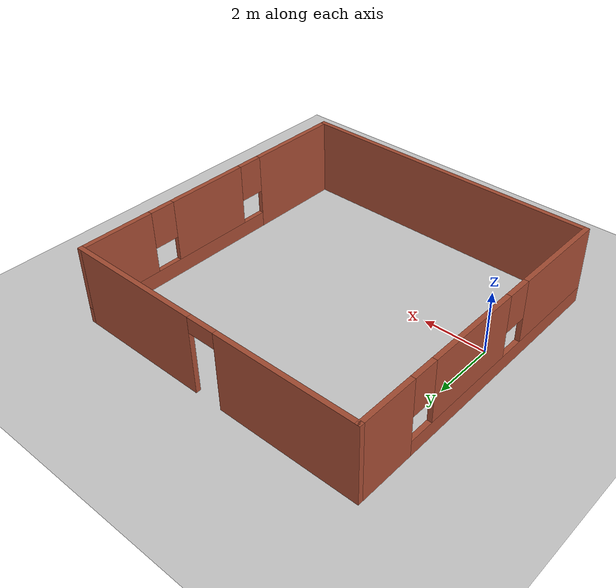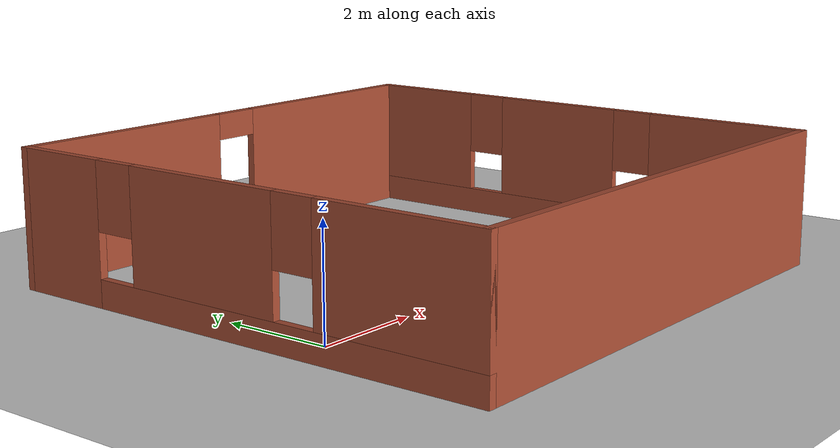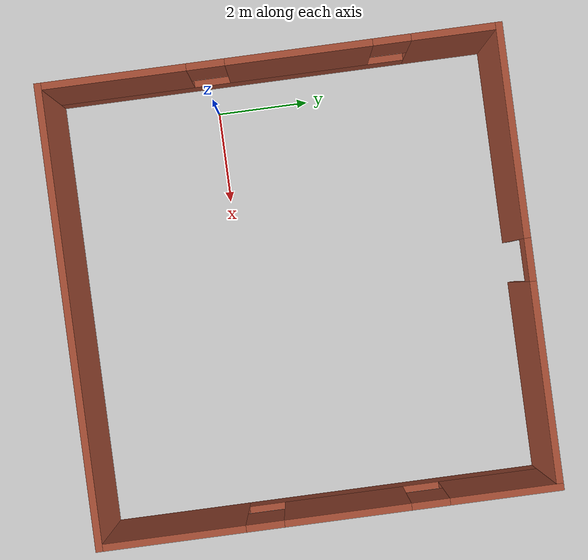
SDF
<sdf version="1.7">
 <world name="default">
  <light name="sun" type="directional">
   <pose>0 0 10 0 -0 0</pose>
   <diffuse>0.8 0.8 0.8 1</diffuse>
   <specular>0.2 0.2 0.2 1</specular>
   <attenuation>
    <range>1000</range>
    <constant>0.9</constant>
    <linear>0.01</linear>
    <quadratic>0.001</quadratic>
   </attenuation>
   <direction>-0.5 0.1 -0.9</direction>
   <spot><inner_angle>0</inner_angle><outer_angle>0</outer_angle><falloff>0</falloff></spot>
  </light>
  <model name="ground_plane">
   <static>1</static>
   <link name="link">
    <collision name="collision">
     <geometry><plane><normal>0 0 1</normal><size>100 100</size></plane></geometry>
     <surface>
      <contact><collide_bitmask>65535</collide_bitmask></contact>
      <friction><ode><mu>100</mu><mu2>50</mu2></ode></friction>
     </surface>
    </collision>
    <visual name="visual">
     <cast_shadows>0</cast_shadows>
     <geometry><plane><normal>0 0 1</normal><size>100 100</size></plane></geometry>
     <material>
      <script><uri>file://media/materials/scripts/gazebo.material</uri><name>Gazebo/Grey</name></script>
     </material>
    </visual>
   </link>
  </model>
  <gravity>0 0 -9.8</gravity>
  <magnetic_field>6e-06 2.3e-05 -4.2e-05</magnetic_field>
  <atmosphere type="adiabatic"/>
  <physics type="ode">
   <max_step_size>0.001</max_step_size>
   <real_time_factor>1</real_time_factor>
   <real_time_update_rate>1000</real_time_update_rate>
  </physics>
  <scene><ambient>0.4 0.4 0.4 1</ambient><background>0.7 0.7 0.7 1</background><shadows>1</shadows></scene>
  <spherical_coordinates>
   <surface_model>EARTH_WGS84</surface_model>
   <latitude_deg>0</latitude_deg>
   <longitude_deg>0</longitude_deg>
   <elevation>0</elevation>
   <heading_deg>0</heading_deg>
  </spherical_coordinates>
  <model name="my_building">
   <pose>4.14 1.28 0 0 -0 0</pose>
   <link name="Wall_11">
    <collision name="Wall_11_Collision">
     <geometry><box><size>9.75 0.15 2.5</size></box></geometry>
     <pose>0 0 1.25 0 -0 0</pose>
    </collision>
    <visual name="Wall_11_Visual">
     <pose>0 0 1.25 0 -0 0</pose>
     <geometry><box><size>9.75 0.15 2.5</size></box></geometry>
     <material>
      <script><uri>file://media/materials/scripts/gazebo.material</uri><name>Gazebo/Bricks</name></script>
      <ambient>1 1 1 1</ambient>
     </material>
     <meta><layer>0</layer></meta>
    </visual>
    <pose>0 -4.8 0 0 -0 0</pose>
   </link>
   <link name="Wall_12">
    <pose>4.8 -0 0 0 -0 1.5708</pose>
    <visual name="Wall_12_Visual_0">
     <pose>-3.30646 0 1.25 0 -0 0</pose>
     <geometry><box><size>3.13707 0.15 2.5</size></box></geometry>
     <material>
      <script><uri>file://media/materials/scripts/gazebo.material</uri><name>Gazebo/Bricks</name></script>
      <ambient>1 1 1 1</ambient>
     </material>
     <meta><layer>0</layer></meta>
    </visual>
    <collision name="Wall_12_Collision_0">
     <geometry><box><size>3.13707 0.15 2.5</size></box></geometry>
     <pose>-3.30646 0 1.25 0 -0 0</pose>
    </collision>
    <visual name="Wall_12_Visual_1">
     <pose>1.56854 0 0.25 0 -0 0</pose>
     <geometry><box><size>6.61293 0.15 0.5</size></box></geometry>
     <material>
      <script><uri>file://media/materials/scripts/gazebo.material</uri><name>Gazebo/Bricks</name></script>
      <ambient>1 1 1 1</ambient>
     </material>
     <meta><layer>0</layer></meta>
    </visual>
    <collision name="Wall_12_Collision_1">
     <geometry><box><size>6.61293 0.15 0.5</size></box></geometry>
     <pose>1.56854 0 0.25 0 -0 0</pose>
    </collision>
    <visual name="Wall_12_Visual_2">
     <pose>0.385304 0 1.5 0 -0 0</pose>
     <geometry><box><size>2.64646 0.15 2</size></box></geometry>
     <material>
      <script><uri>file://media/materials/scripts/gazebo.material</uri><name>Gazebo/Bricks</name></script>
      <ambient>1 1 1 1</ambient>
     </material>
     <meta><layer>0</layer></meta>
    </visual>
    <collision name="Wall_12_Collision_2">
     <geometry><box><size>2.64646 0.15 2</size></box></geometry>
     <pose>0.385304 0 1.5 0 -0 0</pose>
    </collision>
    <visual name="Wall_12_Visual_3">
     <pose>3.69177 0 1.5 0 -0 0</pose>
     <geometry><box><size>2.36647 0.15 2</size></box></geometry>
     <material>
      <script><uri>file://media/materials/scripts/gazebo.material</uri><name>Gazebo/Bricks</name></script>
      <ambient>1 1 1 1</ambient>
     </material>
     <meta><layer>0</layer></meta>
    </visual>
    <collision name="Wall_12_Collision_3">
     <geometry><box><size>2.36647 0.15 2</size></box></geometry>
     <pose>3.69177 0 1.5 0 -0 0</pose>
    </collision>
    <visual name="Wall_12_Visual_4">
     <pose>-1.33793 0 1.9 0 -0 0</pose>
     <geometry><box><size>0.8 0.15 1.2</size></box></geometry>
     <material>
      <script><uri>file://media/materials/scripts/gazebo.material</uri><name>Gazebo/Bricks</name></script>
      <ambient>1 1 1 1</ambient>
     </material>
     <meta><layer>0</layer></meta>
    </visual>
    <collision name="Wall_12_Collision_4">
     <geometry><box><size>0.8 0.15 1.2</size></box></geometry>
     <pose>-1.33793 0 1.9 0 -0 0</pose>
    </collision>
    <visual name="Wall_12_Visual_5">
     <pose>2.10853 0 1.9 0 -0 0</pose>
     <geometry><box><size>0.8 0.15 1.2</size></box></geometry>
     <material>
      <script><uri>file://media/materials/scripts/gazebo.material</uri><name>Gazebo/Bricks</name></script>
      <ambient>1 1 1 1</ambient>
     </material>
     <meta><layer>0</layer></meta>
    </visual>
    <collision name="Wall_12_Collision_5">
     <geometry><box><size>0.8 0.15 1.2</size></box></geometry>
     <pose>2.10853 0 1.9 0 -0 0</pose>
    </collision>
   </link>
   <link name="Wall_7">
    <pose>0 4.8 0 0 -0 3.14159</pose>
    <visual name="Wall_7_Visual_0">
     <pose>-2.69707 0 1.25 0 -0 0</pose>
     <geometry><box><size>4.35586 0.15 2.5</size></box></geometry>
     <material>
      <script><uri>file://media/materials/scripts/gazebo.material</uri><name>Gazebo/Bricks</name></script>
      <ambient>1 1 1 1</ambient>
     </material>
     <meta><layer>0</layer></meta>
    </visual>
    <collision name="Wall_7_Collision_0">
     <geometry><box><size>4.35586 0.15 2.5</size></box></geometry>
     <pose>-2.69707 0 1.25 0 -0 0</pose>
    </collision>
    <visual name="Wall_7_Visual_1">
     <pose>2.62793 0 1.25 0 -0 0</pose>
     <geometry><box><size>4.49414 0.15 2.5</size></box></geometry>
     <material>
      <script><uri>file://media/materials/scripts/gazebo.material</uri><name>Gazebo/Bricks</name></script>
      <ambient>1 1 1 1</ambient>
     </material>
     <meta><layer>0</layer></meta>
    </visual>
    <collision name="Wall_7_Collision_1">
     <geometry><box><size>4.49414 0.15 2.5</size></box></geometry>
     <pose>2.62793 0 1.25 0 -0 0</pose>
    </collision>
    <visual name="Wall_7_Visual_2">
     <pose>-0.069142 0 2.25 0 -0 0</pose>
     <geometry><box><size>0.9 0.15 0.5</size></box></geometry>
     <material>
      <script><uri>file://media/materials/scripts/gazebo.material</uri><name>Gazebo/Bricks</name></script>
      <ambient>1 1 1 1</ambient>
     </material>
     <meta><layer>0</layer></meta>
    </visual>
    <collision name="Wall_7_Collision_2">
     <geometry><box><size>0.9 0.15 0.5</size></box></geometry>
     <pose>-0.069142 0 2.25 0 -0 0</pose>
    </collision>
   </link>
   <link name="Wall_8">
    <pose>-4.8 -0 0 0 -0 -1.5708</pose>
    <visual name="Wall_8_Visual_0">
     <pose>-3.92307 0 1.25 0 -0 0</pose>
     <geometry><box><size>1.90385 0.15 2.5</size></box></geometry>
     <material>
      <script><uri>file://media/materials/scripts/gazebo.material</uri><name>Gazebo/Bricks</name></script>
      <ambient>1 1 1 1</ambient>
     </material>
     <meta><layer>0</layer></meta>
    </visual>
    <collision name="Wall_8_Collision_0">
     <geometry><box><size>1.90385 0.15 2.5</size></box></geometry>
     <pose>-3.92307 0 1.25 0 -0 0</pose>
    </collision>
    <visual name="Wall_8_Visual_1">
     <pose>0.951927 0 0.25 0 -0 0</pose>
     <geometry><box><size>7.84615 0.15 0.5</size></box></geometry>
     <material>
      <script><uri>file://media/materials/scripts/gazebo.material</uri><name>Gazebo/Bricks</name></script>
      <ambient>1 1 1 1</ambient>
     </material>
     <meta><layer>0</layer></meta>
    </visual>
    <collision name="Wall_8_Collision_1">
     <geometry><box><size>7.84615 0.15 0.5</size></box></geometry>
     <pose>0.951927 0 0.25 0 -0 0</pose>
    </collision>
    <visual name="Wall_8_Visual_2">
     <pose>-0.628175 0 1.5 0 -0 0</pose>
     <geometry><box><size>3.08594 0.15 2</size></box></geometry>
     <material>
      <script><uri>file://media/materials/scripts/gazebo.material</uri><name>Gazebo/Bricks</name></script>
      <ambient>1 1 1 1</ambient>
     </material>
     <meta><layer>0</layer></meta>
    </visual>
    <collision name="Wall_8_Collision_2">
     <geometry><box><size>3.08594 0.15 2</size></box></geometry>
     <pose>-0.628175 0 1.5 0 -0 0</pose>
    </collision>
    <visual name="Wall_8_Visual_3">
     <pose>3.2949 0 1.5 0 -0 0</pose>
     <geometry><box><size>3.1602 0.15 2</size></box></geometry>
     <material>
      <script><uri>file://media/materials/scripts/gazebo.material</uri><name>Gazebo/Bricks</name></script>
      <ambient>1 1 1 1</ambient>
     </material>
     <meta><layer>0</layer></meta>
    </visual>
    <collision name="Wall_8_Collision_3">
     <geometry><box><size>3.1602 0.15 2</size></box></geometry>
     <pose>3.2949 0 1.5 0 -0 0</pose>
    </collision>
    <visual name="Wall_8_Visual_4">
     <pose>-2.57115 0 1.9 0 -0 0</pose>
     <geometry><box><size>0.8 0.15 1.2</size></box></geometry>
     <material>
      <script><uri>file://media/materials/scripts/gazebo.material</uri><name>Gazebo/Bricks</name></script>
      <ambient>1 1 1 1</ambient>
     </material>
     <meta><layer>0</layer></meta>
    </visual>
    <collision name="Wall_8_Collision_4">
     <geometry><box><size>0.8 0.15 1.2</size></box></geometry>
     <pose>-2.57115 0 1.9 0 -0 0</pose>
    </collision>
    <visual name="Wall_8_Visual_5">
     <pose>1.3148 0 1.9 0 -0 0</pose>
     <geometry><box><size>0.8 0.15 1.2</size></box></geometry>
     <material>
      <script><uri>file://media/materials/scripts/gazebo.material</uri><name>Gazebo/Bricks</name></script>
      <ambient>1 1 1 1</ambient>
     </material>
     <meta><layer>0</layer></meta>
    </visual>
    <collision name="Wall_8_Collision_5">
     <geometry><box><size>0.8 0.15 1.2</size></box></geometry>
     <pose>1.3148 0 1.9 0 -0 0</pose>
    </collision>
   </link>
   <static>1</static>
  </model>
 </world>
</sdf>
